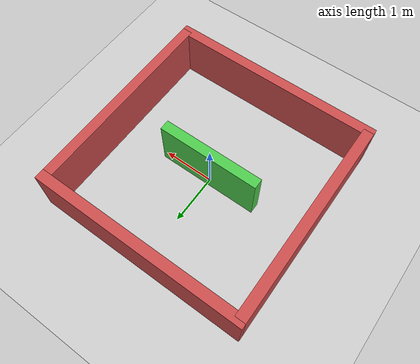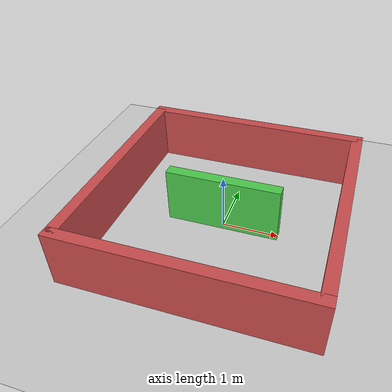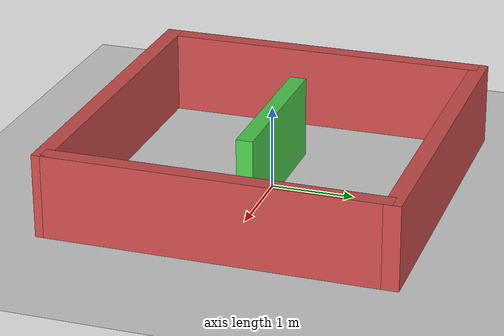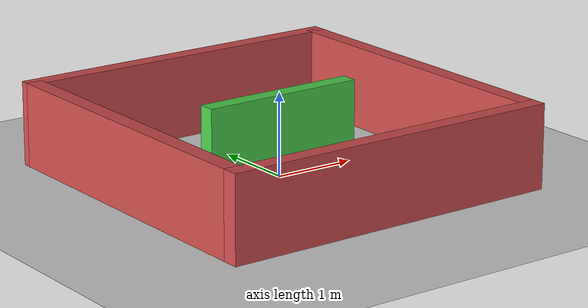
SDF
<?xml version="1.0" ?>
<sdf version="1.6">
  <world name="default">
    <include>
      <uri>model://sun</uri>
    </include>
    <include>
      <uri>model://ground_plane</uri>
    </include>

    <!-- North Wall -->
    <model name="wall_north">
      <static>true</static>
      <pose>0 2 0.5 0 0 0</pose>
      <link name="link">
        <collision name="collision"><geometry><box><size>4.2 0.2 1</size></box></geometry></collision>
        <visual name="visual"><geometry><box><size>4.2 0.2 1</size></box></geometry><material><ambient>0.8 0.3 0.3 1</ambient></material></visual>
      </link>
    </model>

    <!-- South Wall -->
    <model name="wall_south">
      <static>true</static>
      <pose>0 -2 0.5 0 0 0</pose>
      <link name="link">
        <collision name="collision"><geometry><box><size>4.2 0.2 1</size></box></geometry></collision>
        <visual name="visual"><geometry><box><size>4.2 0.2 1</size></box></geometry><material><ambient>0.8 0.3 0.3 1</ambient></material></visual>
      </link>
    </model>

    <!-- East Wall -->
    <model name="wall_east">
      <static>true</static>
      <pose>2 0 0.5 0 0 1.5708</pose>
      <link name="link">
        <collision name="collision"><geometry><box><size>4 0.2 1</size></box></geometry></collision>
        <visual name="visual"><geometry><box><size>4 0.2 1</size></box></geometry><material><ambient>0.8 0.3 0.3 1</ambient></material></visual>
      </link>
    </model>

    <!-- West Wall -->
    <model name="wall_west">
      <static>true</static>
      <pose>-2 0 0.5 0 0 1.5708</pose>
      <link name="link">
        <collision name="collision"><geometry><box><size>4 0.2 1</size></box></geometry></collision>
        <visual name="visual"><geometry><box><size>4 0.2 1</size></box></geometry><material><ambient>0.8 0.3 0.3 1</ambient></material></visual>
      </link>
    </model>

    <!-- Center Obstacle -->
    <model name="center_wall">
      <static>true</static>
      <pose>0 0 0.5 0 0 0</pose>
      <link name="link">
        <collision name="collision"><geometry><box><size>2 0.2 1</size></box></geometry></collision>
        <visual name="visual"><geometry><box><size>2 0.2 1</size></box></geometry><material><ambient>0.3 0.8 0.3 1</ambient></material></visual>
      </link>
    </model>
  </world>
</sdf>
